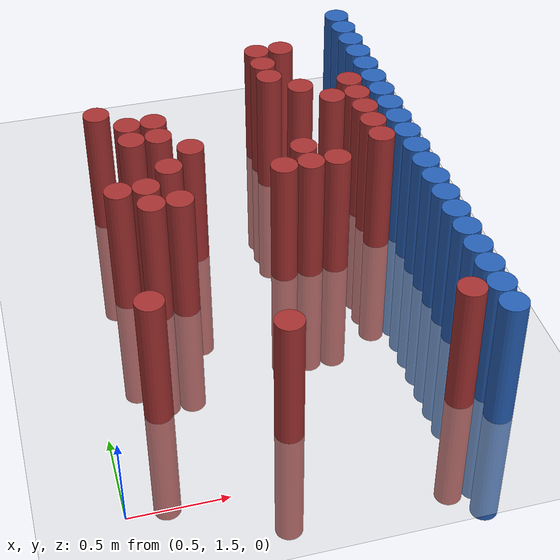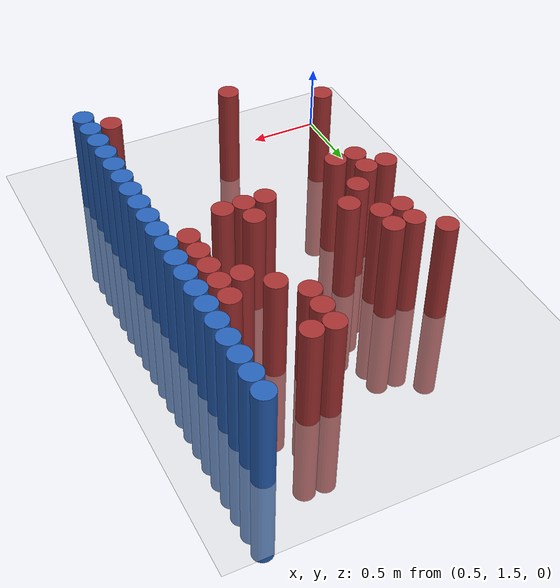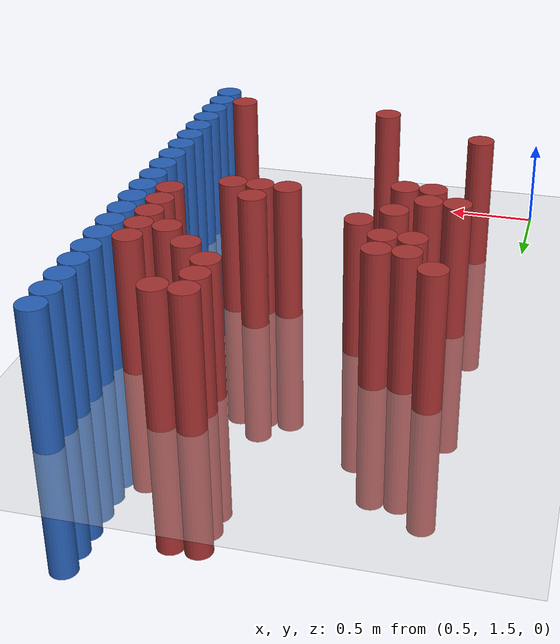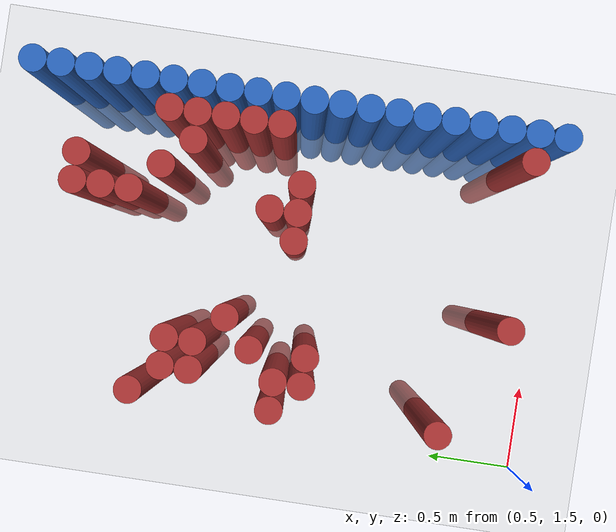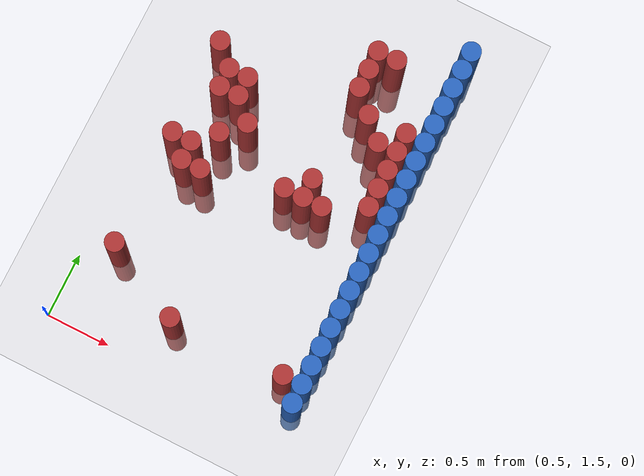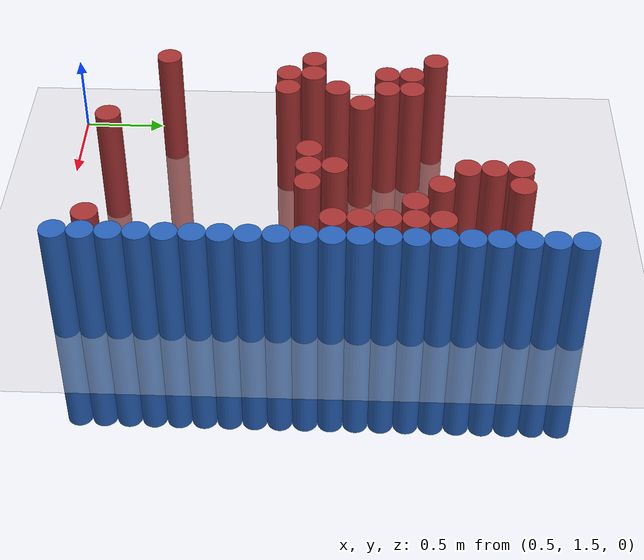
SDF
<sdf version="1.6">
 <world name="default">
  <model name="ground_plane">
   <static>1</static>
   <link name="link">
    <collision name="collision">
     <geometry><plane><normal>0 0 1</normal><size>100 100</size></plane></geometry>
     <surface><friction><ode><mu>100</mu><mu2>50</mu2></ode></friction></surface>
    </collision>
    <visual name="visual">
     <cast_shadows>0</cast_shadows>
     <geometry><plane><normal>0 0 1</normal><size>100 100</size></plane></geometry>
     <material>
      <script><uri>file://media/materials/scripts/gazebo.material</uri><name>Gazebo/Grey</name></script>
     </material>
    </visual>
   </link>
  </model>
  <model name="unit_cylinder_166">
   <static>1</static>
   <pose>0.775000 2.125000 0.000000 0.000000 0.000000 0.000000</pose>
   <link name="link">
    <inertial>
     <mass>1</mass>
     <inertia><ixx>0.145833</ixx><ixy>0</ixy><ixz>0</ixz><iyy>0.145833</iyy><iyz>0</iyz><izz>0.125</izz></inertia>
    </inertial>
    <collision name="collision">
     <geometry><cylinder><radius>0.075000</radius><length>1.5</length></cylinder></geometry>
    </collision>
    <visual name="visual">
     <geometry><cylinder><radius>0.075000</radius><length>1.5</length></cylinder></geometry>
     <material>
      <ambient>0.648000 0.192000 0.192000 1</ambient>
      <diffuse>0.648000 0.192000 0.192000 1</diffuse>
     </material>
     <material>
      <script><name>Gazebo/Grey</name><uri>file://media/materials/scripts/gazebo.material</uri></script>
     </material>
    </visual>
   </link>
  </model>
  <model name="unit_cylinder_167">
   <static>1</static>
   <pose>0.775000 3.025000 0.000000 0.000000 0.000000 0.000000</pose>
   <link name="link">
    <inertial>
     <mass>1</mass>
     <inertia><ixx>0.145833</ixx><ixy>0</ixy><ixz>0</ixz><iyy>0.145833</iyy><iyz>0</iyz><izz>0.125</izz></inertia>
    </inertial>
    <collision name="collision">
     <geometry><cylinder><radius>0.075000</radius><length>1.5</length></cylinder></geometry>
    </collision>
    <visual name="visual">
     <geometry><cylinder><radius>0.075000</radius><length>1.5</length></cylinder></geometry>
     <material>
      <ambient>0.648000 0.192000 0.192000 1</ambient>
      <diffuse>0.648000 0.192000 0.192000 1</diffuse>
     </material>
     <material>
      <script><name>Gazebo/Grey</name><uri>file://media/materials/scripts/gazebo.material</uri></script>
     </material>
    </visual>
   </link>
  </model>
  <model name="unit_cylinder_168">
   <static>1</static>
   <pose>0.775000 3.775000 0.000000 0.000000 0.000000 0.000000</pose>
   <link name="link">
    <inertial>
     <mass>1</mass>
     <inertia><ixx>0.145833</ixx><ixy>0</ixy><ixz>0</ixz><iyy>0.145833</iyy><iyz>0</iyz><izz>0.125</izz></inertia>
    </inertial>
    <collision name="collision">
     <geometry><cylinder><radius>0.075000</radius><length>1.5</length></cylinder></geometry>
    </collision>
    <visual name="visual">
     <geometry><cylinder><radius>0.075000</radius><length>1.5</length></cylinder></geometry>
     <material>
      <ambient>0.648000 0.192000 0.192000 1</ambient>
      <diffuse>0.648000 0.192000 0.192000 1</diffuse>
     </material>
     <material>
      <script><name>Gazebo/Grey</name><uri>file://media/materials/scripts/gazebo.material</uri></script>
     </material>
    </visual>
   </link>
  </model>
  <model name="unit_cylinder_171">
   <static>1</static>
   <pose>0.925000 2.875000 0.000000 0.000000 0.000000 0.000000</pose>
   <link name="link">
    <inertial>
     <mass>1</mass>
     <inertia><ixx>0.145833</ixx><ixy>0</ixy><ixz>0</ixz><iyy>0.145833</iyy><iyz>0</iyz><izz>0.125</izz></inertia>
    </inertial>
    <collision name="collision">
     <geometry><cylinder><radius>0.075000</radius><length>1.5</length></cylinder></geometry>
    </collision>
    <visual name="visual">
     <geometry><cylinder><radius>0.075000</radius><length>1.5</length></cylinder></geometry>
     <material>
      <ambient>0.648000 0.192000 0.192000 1</ambient>
      <diffuse>0.648000 0.192000 0.192000 1</diffuse>
     </material>
     <material>
      <script><name>Gazebo/Grey</name><uri>file://media/materials/scripts/gazebo.material</uri></script>
     </material>
    </visual>
   </link>
  </model>
  <model name="unit_cylinder_172">
   <static>1</static>
   <pose>0.925000 3.025000 0.000000 0.000000 0.000000 0.000000</pose>
   <link name="link">
    <inertial>
     <mass>1</mass>
     <inertia><ixx>0.145833</ixx><ixy>0</ixy><ixz>0</ixz><iyy>0.145833</iyy><iyz>0</iyz><izz>0.125</izz></inertia>
    </inertial>
    <collision name="collision">
     <geometry><cylinder><radius>0.075000</radius><length>1.5</length></cylinder></geometry>
    </collision>
    <visual name="visual">
     <geometry><cylinder><radius>0.075000</radius><length>1.5</length></cylinder></geometry>
     <material>
      <ambient>0.648000 0.192000 0.192000 1</ambient>
      <diffuse>0.648000 0.192000 0.192000 1</diffuse>
     </material>
     <material>
      <script><name>Gazebo/Grey</name><uri>file://media/materials/scripts/gazebo.material</uri></script>
     </material>
    </visual>
   </link>
  </model>
  <model name="unit_cylinder_173">
   <static>1</static>
   <pose>0.925000 3.475000 0.000000 0.000000 0.000000 0.000000</pose>
   <link name="link">
    <inertial>
     <mass>1</mass>
     <inertia><ixx>0.145833</ixx><ixy>0</ixy><ixz>0</ixz><iyy>0.145833</iyy><iyz>0</iyz><izz>0.125</izz></inertia>
    </inertial>
    <collision name="collision">
     <geometry><cylinder><radius>0.075000</radius><length>1.5</length></cylinder></geometry>
    </collision>
    <visual name="visual">
     <geometry><cylinder><radius>0.075000</radius><length>1.5</length></cylinder></geometry>
     <material>
      <ambient>0.648000 0.192000 0.192000 1</ambient>
      <diffuse>0.648000 0.192000 0.192000 1</diffuse>
     </material>
     <material>
      <script><name>Gazebo/Grey</name><uri>file://media/materials/scripts/gazebo.material</uri></script>
     </material>
    </visual>
   </link>
  </model>
  <model name="unit_cylinder_174">
   <static>1</static>
   <pose>0.925000 3.625000 0.000000 0.000000 0.000000 0.000000</pose>
   <link name="link">
    <inertial>
     <mass>1</mass>
     <inertia><ixx>0.145833</ixx><ixy>0</ixy><ixz>0</ixz><iyy>0.145833</iyy><iyz>0</iyz><izz>0.125</izz></inertia>
    </inertial>
    <collision name="collision">
     <geometry><cylinder><radius>0.075000</radius><length>1.5</length></cylinder></geometry>
    </collision>
    <visual name="visual">
     <geometry><cylinder><radius>0.075000</radius><length>1.5</length></cylinder></geometry>
     <material>
      <ambient>0.648000 0.192000 0.192000 1</ambient>
      <diffuse>0.648000 0.192000 0.192000 1</diffuse>
     </material>
     <material>
      <script><name>Gazebo/Grey</name><uri>file://media/materials/scripts/gazebo.material</uri></script>
     </material>
    </visual>
   </link>
  </model>
  <model name="unit_cylinder_176">
   <static>1</static>
   <pose>1.075000 2.875000 0.000000 0.000000 0.000000 0.000000</pose>
   <link name="link">
    <inertial>
     <mass>1</mass>
     <inertia><ixx>0.145833</ixx><ixy>0</ixy><ixz>0</ixz><iyy>0.145833</iyy><iyz>0</iyz><izz>0.125</izz></inertia>
    </inertial>
    <collision name="collision">
     <geometry><cylinder><radius>0.075000</radius><length>1.5</length></cylinder></geometry>
    </collision>
    <visual name="visual">
     <geometry><cylinder><radius>0.075000</radius><length>1.5</length></cylinder></geometry>
     <material>
      <ambient>0.648000 0.192000 0.192000 1</ambient>
      <diffuse>0.648000 0.192000 0.192000 1</diffuse>
     </material>
     <material>
      <script><name>Gazebo/Grey</name><uri>file://media/materials/scripts/gazebo.material</uri></script>
     </material>
    </visual>
   </link>
  </model>
  <model name="unit_cylinder_177">
   <static>1</static>
   <pose>1.075000 3.175000 0.000000 0.000000 0.000000 0.000000</pose>
   <link name="link">
    <inertial>
     <mass>1</mass>
     <inertia><ixx>0.145833</ixx><ixy>0</ixy><ixz>0</ixz><iyy>0.145833</iyy><iyz>0</iyz><izz>0.125</izz></inertia>
    </inertial>
    <collision name="collision">
     <geometry><cylinder><radius>0.075000</radius><length>1.5</length></cylinder></geometry>
    </collision>
    <visual name="visual">
     <geometry><cylinder><radius>0.075000</radius><length>1.5</length></cylinder></geometry>
     <material>
      <ambient>0.648000 0.192000 0.192000 1</ambient>
      <diffuse>0.648000 0.192000 0.192000 1</diffuse>
     </material>
     <material>
      <script><name>Gazebo/Grey</name><uri>file://media/materials/scripts/gazebo.material</uri></script>
     </material>
    </visual>
   </link>
  </model>
  <model name="unit_cylinder_178">
   <static>1</static>
   <pose>1.075000 3.475000 0.000000 0.000000 0.000000 0.000000</pose>
   <link name="link">
    <inertial>
     <mass>1</mass>
     <inertia><ixx>0.145833</ixx><ixy>0</ixy><ixz>0</ixz><iyy>0.145833</iyy><iyz>0</iyz><izz>0.125</izz></inertia>
    </inertial>
    <collision name="collision">
     <geometry><cylinder><radius>0.075000</radius><length>1.5</length></cylinder></geometry>
    </collision>
    <visual name="visual">
     <geometry><cylinder><radius>0.075000</radius><length>1.5</length></cylinder></geometry>
     <material>
      <ambient>0.648000 0.192000 0.192000 1</ambient>
      <diffuse>0.648000 0.192000 0.192000 1</diffuse>
     </material>
     <material>
      <script><name>Gazebo/Grey</name><uri>file://media/materials/scripts/gazebo.material</uri></script>
     </material>
    </visual>
   </link>
  </model>
  <model name="unit_cylinder_179">
   <static>1</static>
   <pose>1.075000 3.625000 0.000000 0.000000 0.000000 0.000000</pose>
   <link name="link">
    <inertial>
     <mass>1</mass>
     <inertia><ixx>0.145833</ixx><ixy>0</ixy><ixz>0</ixz><iyy>0.145833</iyy><iyz>0</iyz><izz>0.125</izz></inertia>
    </inertial>
    <collision name="collision">
     <geometry><cylinder><radius>0.075000</radius><length>1.5</length></cylinder></geometry>
    </collision>
    <visual name="visual">
     <geometry><cylinder><radius>0.075000</radius><length>1.5</length></cylinder></geometry>
     <material>
      <ambient>0.648000 0.192000 0.192000 1</ambient>
      <diffuse>0.648000 0.192000 0.192000 1</diffuse>
     </material>
     <material>
      <script><name>Gazebo/Grey</name><uri>file://media/materials/scripts/gazebo.material</uri></script>
     </material>
    </visual>
   </link>
  </model>
  <model name="unit_cylinder_182">
   <static>1</static>
   <pose>1.225000 3.325000 0.000000 0.000000 0.000000 0.000000</pose>
   <link name="link">
    <inertial>
     <mass>1</mass>
     <inertia><ixx>0.145833</ixx><ixy>0</ixy><ixz>0</ixz><iyy>0.145833</iyy><iyz>0</iyz><izz>0.125</izz></inertia>
    </inertial>
    <collision name="collision">
     <geometry><cylinder><radius>0.075000</radius><length>1.5</length></cylinder></geometry>
    </collision>
    <visual name="visual">
     <geometry><cylinder><radius>0.075000</radius><length>1.5</length></cylinder></geometry>
     <material>
      <ambient>0.648000 0.192000 0.192000 1</ambient>
      <diffuse>0.648000 0.192000 0.192000 1</diffuse>
     </material>
     <material>
      <script><name>Gazebo/Grey</name><uri>file://media/materials/scripts/gazebo.material</uri></script>
     </material>
    </visual>
   </link>
  </model>
  <model name="unit_cylinder_185">
   <static>1</static>
   <pose>1.375000 1.825000 0.000000 0.000000 0.000000 0.000000</pose>
   <link name="link">
    <inertial>
     <mass>1</mass>
     <inertia><ixx>0.145833</ixx><ixy>0</ixy><ixz>0</ixz><iyy>0.145833</iyy><iyz>0</iyz><izz>0.125</izz></inertia>
    </inertial>
    <collision name="collision">
     <geometry><cylinder><radius>0.075000</radius><length>1.5</length></cylinder></geometry>
    </collision>
    <visual name="visual">
     <geometry><cylinder><radius>0.075000</radius><length>1.5</length></cylinder></geometry>
     <material>
      <ambient>0.648000 0.192000 0.192000 1</ambient>
      <diffuse>0.648000 0.192000 0.192000 1</diffuse>
     </material>
     <material>
      <script><name>Gazebo/Grey</name><uri>file://media/materials/scripts/gazebo.material</uri></script>
     </material>
    </visual>
   </link>
  </model>
  <model name="unit_cylinder_190">
   <static>1</static>
   <pose>1.675000 3.025000 0.000000 0.000000 0.000000 0.000000</pose>
   <link name="link">
    <inertial>
     <mass>1</mass>
     <inertia><ixx>0.145833</ixx><ixy>0</ixy><ixz>0</ixz><iyy>0.145833</iyy><iyz>0</iyz><izz>0.125</izz></inertia>
    </inertial>
    <collision name="collision">
     <geometry><cylinder><radius>0.075000</radius><length>1.5</length></cylinder></geometry>
    </collision>
    <visual name="visual">
     <geometry><cylinder><radius>0.075000</radius><length>1.5</length></cylinder></geometry>
     <material>
      <ambient>0.648000 0.192000 0.192000 1</ambient>
      <diffuse>0.648000 0.192000 0.192000 1</diffuse>
     </material>
     <material>
      <script><name>Gazebo/Grey</name><uri>file://media/materials/scripts/gazebo.material</uri></script>
     </material>
    </visual>
   </link>
  </model>
  <model name="unit_cylinder_196">
   <static>1</static>
   <pose>1.825000 3.025000 0.000000 0.000000 0.000000 0.000000</pose>
   <link name="link">
    <inertial>
     <mass>1</mass>
     <inertia><ixx>0.145833</ixx><ixy>0</ixy><ixz>0</ixz><iyy>0.145833</iyy><iyz>0</iyz><izz>0.125</izz></inertia>
    </inertial>
    <collision name="collision">
     <geometry><cylinder><radius>0.075000</radius><length>1.5</length></cylinder></geometry>
    </collision>
    <visual name="visual">
     <geometry><cylinder><radius>0.075000</radius><length>1.5</length></cylinder></geometry>
     <material>
      <ambient>0.648000 0.192000 0.192000 1</ambient>
      <diffuse>0.648000 0.192000 0.192000 1</diffuse>
     </material>
     <material>
      <script><name>Gazebo/Grey</name><uri>file://media/materials/scripts/gazebo.material</uri></script>
     </material>
    </visual>
   </link>
  </model>
  <model name="unit_cylinder_197">
   <static>1</static>
   <pose>1.825000 3.175000 0.000000 0.000000 0.000000 0.000000</pose>
   <link name="link">
    <inertial>
     <mass>1</mass>
     <inertia><ixx>0.145833</ixx><ixy>0</ixy><ixz>0</ixz><iyy>0.145833</iyy><iyz>0</iyz><izz>0.125</izz></inertia>
    </inertial>
    <collision name="collision">
     <geometry><cylinder><radius>0.075000</radius><length>1.5</length></cylinder></geometry>
    </collision>
    <visual name="visual">
     <geometry><cylinder><radius>0.075000</radius><length>1.5</length></cylinder></geometry>
     <material>
      <ambient>0.648000 0.192000 0.192000 1</ambient>
      <diffuse>0.648000 0.192000 0.192000 1</diffuse>
     </material>
     <material>
      <script><name>Gazebo/Grey</name><uri>file://media/materials/scripts/gazebo.material</uri></script>
     </material>
    </visual>
   </link>
  </model>
  <model name="unit_cylinder_198">
   <static>1</static>
   <pose>1.825000 3.925000 0.000000 0.000000 0.000000 0.000000</pose>
   <link name="link">
    <inertial>
     <mass>1</mass>
     <inertia><ixx>0.145833</ixx><ixy>0</ixy><ixz>0</ixz><iyy>0.145833</iyy><iyz>0</iyz><izz>0.125</izz></inertia>
    </inertial>
    <collision name="collision">
     <geometry><cylinder><radius>0.075000</radius><length>1.5</length></cylinder></geometry>
    </collision>
    <visual name="visual">
     <geometry><cylinder><radius>0.075000</radius><length>1.5</length></cylinder></geometry>
     <material>
      <ambient>0.648000 0.192000 0.192000 1</ambient>
      <diffuse>0.648000 0.192000 0.192000 1</diffuse>
     </material>
     <material>
      <script><name>Gazebo/Grey</name><uri>file://media/materials/scripts/gazebo.material</uri></script>
     </material>
    </visual>
   </link>
  </model>
  <model name="unit_cylinder_199">
   <static>1</static>
   <pose>1.825000 4.075000 0.000000 0.000000 0.000000 0.000000</pose>
   <link name="link">
    <inertial>
     <mass>1</mass>
     <inertia><ixx>0.145833</ixx><ixy>0</ixy><ixz>0</ixz><iyy>0.145833</iyy><iyz>0</iyz><izz>0.125</izz></inertia>
    </inertial>
    <collision name="collision">
     <geometry><cylinder><radius>0.075000</radius><length>1.5</length></cylinder></geometry>
    </collision>
    <visual name="visual">
     <geometry><cylinder><radius>0.075000</radius><length>1.5</length></cylinder></geometry>
     <material>
      <ambient>0.648000 0.192000 0.192000 1</ambient>
      <diffuse>0.648000 0.192000 0.192000 1</diffuse>
     </material>
     <material>
      <script><name>Gazebo/Grey</name><uri>file://media/materials/scripts/gazebo.material</uri></script>
     </material>
    </visual>
   </link>
  </model>
  <model name="unit_cylinder_200">
   <static>1</static>
   <pose>1.825000 4.225000 0.000000 0.000000 0.000000 0.000000</pose>
   <link name="link">
    <inertial>
     <mass>1</mass>
     <inertia><ixx>0.145833</ixx><ixy>0</ixy><ixz>0</ixz><iyy>0.145833</iyy><iyz>0</iyz><izz>0.125</izz></inertia>
    </inertial>
    <collision name="collision">
     <geometry><cylinder><radius>0.075000</radius><length>1.5</length></cylinder></geometry>
    </collision>
    <visual name="visual">
     <geometry><cylinder><radius>0.075000</radius><length>1.5</length></cylinder></geometry>
     <material>
      <ambient>0.648000 0.192000 0.192000 1</ambient>
      <diffuse>0.648000 0.192000 0.192000 1</diffuse>
     </material>
     <material>
      <script><name>Gazebo/Grey</name><uri>file://media/materials/scripts/gazebo.material</uri></script>
     </material>
    </visual>
   </link>
  </model>
  <model name="unit_cylinder_204">
   <static>1</static>
   <pose>1.975000 3.025000 0.000000 0.000000 0.000000 0.000000</pose>
   <link name="link">
    <inertial>
     <mass>1</mass>
     <inertia><ixx>0.145833</ixx><ixy>0</ixy><ixz>0</ixz><iyy>0.145833</iyy><iyz>0</iyz><izz>0.125</izz></inertia>
    </inertial>
    <collision name="collision">
     <geometry><cylinder><radius>0.075000</radius><length>1.5</length></cylinder></geometry>
    </collision>
    <visual name="visual">
     <geometry><cylinder><radius>0.075000</radius><length>1.5</length></cylinder></geometry>
     <material>
      <ambient>0.648000 0.192000 0.192000 1</ambient>
      <diffuse>0.648000 0.192000 0.192000 1</diffuse>
     </material>
     <material>
      <script><name>Gazebo/Grey</name><uri>file://media/materials/scripts/gazebo.material</uri></script>
     </material>
    </visual>
   </link>
  </model>
  <model name="unit_cylinder_205">
   <static>1</static>
   <pose>1.975000 3.775000 0.000000 0.000000 0.000000 0.000000</pose>
   <link name="link">
    <inertial>
     <mass>1</mass>
     <inertia><ixx>0.145833</ixx><ixy>0</ixy><ixz>0</ixz><iyy>0.145833</iyy><iyz>0</iyz><izz>0.125</izz></inertia>
    </inertial>
    <collision name="collision">
     <geometry><cylinder><radius>0.075000</radius><length>1.5</length></cylinder></geometry>
    </collision>
    <visual name="visual">
     <geometry><cylinder><radius>0.075000</radius><length>1.5</length></cylinder></geometry>
     <material>
      <ambient>0.648000 0.192000 0.192000 1</ambient>
      <diffuse>0.648000 0.192000 0.192000 1</diffuse>
     </material>
     <material>
      <script><name>Gazebo/Grey</name><uri>file://media/materials/scripts/gazebo.material</uri></script>
     </material>
    </visual>
   </link>
  </model>
  <model name="unit_cylinder_206">
   <static>1</static>
   <pose>1.975000 4.225000 0.000000 0.000000 0.000000 0.000000</pose>
   <link name="link">
    <inertial>
     <mass>1</mass>
     <inertia><ixx>0.145833</ixx><ixy>0</ixy><ixz>0</ixz><iyy>0.145833</iyy><iyz>0</iyz><izz>0.125</izz></inertia>
    </inertial>
    <collision name="collision">
     <geometry><cylinder><radius>0.075000</radius><length>1.5</length></cylinder></geometry>
    </collision>
    <visual name="visual">
     <geometry><cylinder><radius>0.075000</radius><length>1.5</length></cylinder></geometry>
     <material>
      <ambient>0.648000 0.192000 0.192000 1</ambient>
      <diffuse>0.648000 0.192000 0.192000 1</diffuse>
     </material>
     <material>
      <script><name>Gazebo/Grey</name><uri>file://media/materials/scripts/gazebo.material</uri></script>
     </material>
    </visual>
   </link>
  </model>
  <model name="unit_cylinder_207">
   <static>1</static>
   <pose>2.125000 3.625000 0.000000 0.000000 0.000000 0.000000</pose>
   <link name="link">
    <inertial>
     <mass>1</mass>
     <inertia><ixx>0.145833</ixx><ixy>0</ixy><ixz>0</ixz><iyy>0.145833</iyy><iyz>0</iyz><izz>0.125</izz></inertia>
    </inertial>
    <collision name="collision">
     <geometry><cylinder><radius>0.075000</radius><length>1.5</length></cylinder></geometry>
    </collision>
    <visual name="visual">
     <geometry><cylinder><radius>0.075000</radius><length>1.5</length></cylinder></geometry>
     <material>
      <ambient>0.648000 0.192000 0.192000 1</ambient>
      <diffuse>0.648000 0.192000 0.192000 1</diffuse>
     </material>
     <material>
      <script><name>Gazebo/Grey</name><uri>file://media/materials/scripts/gazebo.material</uri></script>
     </material>
    </visual>
   </link>
  </model>
  <model name="unit_cylinder_208">
   <static>1</static>
   <pose>2.275000 1.825000 0.000000 0.000000 0.000000 0.000000</pose>
   <link name="link">
    <inertial>
     <mass>1</mass>
     <inertia><ixx>0.145833</ixx><ixy>0</ixy><ixz>0</ixz><iyy>0.145833</iyy><iyz>0</iyz><izz>0.125</izz></inertia>
    </inertial>
    <collision name="collision">
     <geometry><cylinder><radius>0.075000</radius><length>1.5</length></cylinder></geometry>
    </collision>
    <visual name="visual">
     <geometry><cylinder><radius>0.075000</radius><length>1.5</length></cylinder></geometry>
     <material>
      <ambient>0.648000 0.192000 0.192000 1</ambient>
      <diffuse>0.648000 0.192000 0.192000 1</diffuse>
     </material>
     <material>
      <script><name>Gazebo/Grey</name><uri>file://media/materials/scripts/gazebo.material</uri></script>
     </material>
    </visual>
   </link>
  </model>
  <model name="unit_cylinder_209">
   <static>1</static>
   <pose>2.275000 3.175000 0.000000 0.000000 0.000000 0.000000</pose>
   <link name="link">
    <inertial>
     <mass>1</mass>
     <inertia><ixx>0.145833</ixx><ixy>0</ixy><ixz>0</ixz><iyy>0.145833</iyy><iyz>0</iyz><izz>0.125</izz></inertia>
    </inertial>
    <collision name="collision">
     <geometry><cylinder><radius>0.075000</radius><length>1.5</length></cylinder></geometry>
    </collision>
    <visual name="visual">
     <geometry><cylinder><radius>0.075000</radius><length>1.5</length></cylinder></geometry>
     <material>
      <ambient>0.648000 0.192000 0.192000 1</ambient>
      <diffuse>0.648000 0.192000 0.192000 1</diffuse>
     </material>
     <material>
      <script><name>Gazebo/Grey</name><uri>file://media/materials/scripts/gazebo.material</uri></script>
     </material>
    </visual>
   </link>
  </model>
  <model name="unit_cylinder_210">
   <static>1</static>
   <pose>2.275000 3.325000 0.000000 0.000000 0.000000 0.000000</pose>
   <link name="link">
    <inertial>
     <mass>1</mass>
     <inertia><ixx>0.145833</ixx><ixy>0</ixy><ixz>0</ixz><iyy>0.145833</iyy><iyz>0</iyz><izz>0.125</izz></inertia>
    </inertial>
    <collision name="collision">
     <geometry><cylinder><radius>0.075000</radius><length>1.5</length></cylinder></geometry>
    </collision>
    <visual name="visual">
     <geometry><cylinder><radius>0.075000</radius><length>1.5</length></cylinder></geometry>
     <material>
      <ambient>0.648000 0.192000 0.192000 1</ambient>
      <diffuse>0.648000 0.192000 0.192000 1</diffuse>
     </material>
     <material>
      <script><name>Gazebo/Grey</name><uri>file://media/materials/scripts/gazebo.material</uri></script>
     </material>
    </visual>
   </link>
  </model>
  <model name="unit_cylinder_211">
   <static>1</static>
   <pose>2.275000 3.475000 0.000000 0.000000 0.000000 0.000000</pose>
   <link name="link">
    <inertial>
     <mass>1</mass>
     <inertia><ixx>0.145833</ixx><ixy>0</ixy><ixz>0</ixz><iyy>0.145833</iyy><iyz>0</iyz><izz>0.125</izz></inertia>
    </inertial>
    <collision name="collision">
     <geometry><cylinder><radius>0.075000</radius><length>1.5</length></cylinder></geometry>
    </collision>
    <visual name="visual">
     <geometry><cylinder><radius>0.075000</radius><length>1.5</length></cylinder></geometry>
     <material>
      <ambient>0.648000 0.192000 0.192000 1</ambient>
      <diffuse>0.648000 0.192000 0.192000 1</diffuse>
     </material>
     <material>
      <script><name>Gazebo/Grey</name><uri>file://media/materials/scripts/gazebo.material</uri></script>
     </material>
    </visual>
   </link>
  </model>
  <model name="unit_cylinder_212">
   <static>1</static>
   <pose>2.275000 3.625000 0.000000 0.000000 0.000000 0.000000</pose>
   <link name="link">
    <inertial>
     <mass>1</mass>
     <inertia><ixx>0.145833</ixx><ixy>0</ixy><ixz>0</ixz><iyy>0.145833</iyy><iyz>0</iyz><izz>0.125</izz></inertia>
    </inertial>
    <collision name="collision">
     <geometry><cylinder><radius>0.075000</radius><length>1.5</length></cylinder></geometry>
    </collision>
    <visual name="visual">
     <geometry><cylinder><radius>0.075000</radius><length>1.5</length></cylinder></geometry>
     <material>
      <ambient>0.648000 0.192000 0.192000 1</ambient>
      <diffuse>0.648000 0.192000 0.192000 1</diffuse>
     </material>
     <material>
      <script><name>Gazebo/Grey</name><uri>file://media/materials/scripts/gazebo.material</uri></script>
     </material>
    </visual>
   </link>
  </model>
  <model name="unit_cylinder_213">
   <static>1</static>
   <pose>2.275000 3.775000 0.000000 0.000000 0.000000 0.000000</pose>
   <link name="link">
    <inertial>
     <mass>1</mass>
     <inertia><ixx>0.145833</ixx><ixy>0</ixy><ixz>0</ixz><iyy>0.145833</iyy><iyz>0</iyz><izz>0.125</izz></inertia>
    </inertial>
    <collision name="collision">
     <geometry><cylinder><radius>0.075000</radius><length>1.5</length></cylinder></geometry>
    </collision>
    <visual name="visual">
     <geometry><cylinder><radius>0.075000</radius><length>1.5</length></cylinder></geometry>
     <material>
      <ambient>0.648000 0.192000 0.192000 1</ambient>
      <diffuse>0.648000 0.192000 0.192000 1</diffuse>
     </material>
     <material>
      <script><name>Gazebo/Grey</name><uri>file://media/materials/scripts/gazebo.material</uri></script>
     </material>
    </visual>
   </link>
  </model>
  <model name="unit_cylinder_224">
   <static>1</static>
   <pose>2.425000 1.675000 0.000000 0.000000 0.000000 0.000000</pose>
   <link name="link">
    <inertial>
     <mass>1</mass>
     <inertia><ixx>0.145833</ixx><ixy>0</ixy><ixz>0</ixz><iyy>0.145833</iyy><iyz>0</iyz><izz>0.125</izz></inertia>
    </inertial>
    <collision name="collision">
     <geometry><cylinder><radius>0.075000</radius><length>1.5</length></cylinder></geometry>
    </collision>
    <visual name="visual">
     <geometry><cylinder><radius>0.075000</radius><length>1.5</length></cylinder></geometry>
     <material>
      <ambient>0.152000 0.379000 0.720000 1</ambient>
      <diffuse>0.152000 0.379000 0.720000 1</diffuse>
     </material>
     <material>
      <script><name>Gazebo/Grey</name><uri>file://media/materials/scripts/gazebo.material</uri></script>
     </material>
    </visual>
   </link>
  </model>
  <model name="unit_cylinder_225">
   <static>1</static>
   <pose>2.425000 1.825000 0.000000 0.000000 0.000000 0.000000</pose>
   <link name="link">
    <inertial>
     <mass>1</mass>
     <inertia><ixx>0.145833</ixx><ixy>0</ixy><ixz>0</ixz><iyy>0.145833</iyy><iyz>0</iyz><izz>0.125</izz></inertia>
    </inertial>
    <collision name="collision">
     <geometry><cylinder><radius>0.075000</radius><length>1.5</length></cylinder></geometry>
    </collision>
    <visual name="visual">
     <geometry><cylinder><radius>0.075000</radius><length>1.5</length></cylinder></geometry>
     <material>
      <ambient>0.152000 0.379000 0.720000 1</ambient>
      <diffuse>0.152000 0.379000 0.720000 1</diffuse>
     </material>
     <material>
      <script><name>Gazebo/Grey</name><uri>file://media/materials/scripts/gazebo.material</uri></script>
     </material>
    </visual>
   </link>
  </model>
  <model name="unit_cylinder_226">
   <static>1</static>
   <pose>2.425000 1.975000 0.000000 0.000000 0.000000 0.000000</pose>
   <link name="link">
    <inertial>
     <mass>1</mass>
     <inertia><ixx>0.145833</ixx><ixy>0</ixy><ixz>0</ixz><iyy>0.145833</iyy><iyz>0</iyz><izz>0.125</izz></inertia>
    </inertial>
    <collision name="collision">
     <geometry><cylinder><radius>0.075000</radius><length>1.5</length></cylinder></geometry>
    </collision>
    <visual name="visual">
     <geometry><cylinder><radius>0.075000</radius><length>1.5</length></cylinder></geometry>
     <material>
      <ambient>0.152000 0.379000 0.720000 1</ambient>
      <diffuse>0.152000 0.379000 0.720000 1</diffuse>
     </material>
     <material>
      <script><name>Gazebo/Grey</name><uri>file://media/materials/scripts/gazebo.material</uri></script>
     </material>
    </visual>
   </link>
  </model>
  <model name="unit_cylinder_227">
   <static>1</static>
   <pose>2.425000 2.125000 0.000000 0.000000 0.000000 0.000000</pose>
   <link name="link">
    <inertial>
     <mass>1</mass>
     <inertia><ixx>0.145833</ixx><ixy>0</ixy><ixz>0</ixz><iyy>0.145833</iyy><iyz>0</iyz><izz>0.125</izz></inertia>
    </inertial>
    <collision name="collision">
     <geometry><cylinder><radius>0.075000</radius><length>1.5</length></cylinder></geometry>
    </collision>
    <visual name="visual">
     <geometry><cylinder><radius>0.075000</radius><length>1.5</length></cylinder></geometry>
     <material>
      <ambient>0.152000 0.379000 0.720000 1</ambient>
      <diffuse>0.152000 0.379000 0.720000 1</diffuse>
     </material>
     <material>
      <script><name>Gazebo/Grey</name><uri>file://media/materials/scripts/gazebo.material</uri></script>
     </material>
    </visual>
   </link>
  </model>
  <model name="unit_cylinder_228">
   <static>1</static>
   <pose>2.425000 2.275000 0.000000 0.000000 0.000000 0.000000</pose>
   <link name="link">
    <inertial>
     <mass>1</mass>
     <inertia><ixx>0.145833</ixx><ixy>0</ixy><ixz>0</ixz><iyy>0.145833</iyy><iyz>0</iyz><izz>0.125</izz></inertia>
    </inertial>
    <collision name="collision">
     <geometry><cylinder><radius>0.075000</radius><length>1.5</length></cylinder></geometry>
    </collision>
    <visual name="visual">
     <geometry><cylinder><radius>0.075000</radius><length>1.5</length></cylinder></geometry>
     <material>
      <ambient>0.152000 0.379000 0.720000 1</ambient>
      <diffuse>0.152000 0.379000 0.720000 1</diffuse>
     </material>
     <material>
      <script><name>Gazebo/Grey</name><uri>file://media/materials/scripts/gazebo.material</uri></script>
     </material>
    </visual>
   </link>
  </model>
  <model name="unit_cylinder_229">
   <static>1</static>
   <pose>2.425000 2.425000 0.000000 0.000000 0.000000 0.000000</pose>
   <link name="link">
    <inertial>
     <mass>1</mass>
     <inertia><ixx>0.145833</ixx><ixy>0</ixy><ixz>0</ixz><iyy>0.145833</iyy><iyz>0</iyz><izz>0.125</izz></inertia>
    </inertial>
    <collision name="collision">
     <geometry><cylinder><radius>0.075000</radius><length>1.5</length></cylinder></geometry>
    </collision>
    <visual name="visual">
     <geometry><cylinder><radius>0.075000</radius><length>1.5</length></cylinder></geometry>
     <material>
      <ambient>0.152000 0.379000 0.720000 1</ambient>
      <diffuse>0.152000 0.379000 0.720000 1</diffuse>
     </material>
     <material>
      <script><name>Gazebo/Grey</name><uri>file://media/materials/scripts/gazebo.material</uri></script>
     </material>
    </visual>
   </link>
  </model>
  <model name="unit_cylinder_230">
   <static>1</static>
   <pose>2.425000 2.575000 0.000000 0.000000 0.000000 0.000000</pose>
   <link name="link">
    <inertial>
     <mass>1</mass>
     <inertia><ixx>0.145833</ixx><ixy>0</ixy><ixz>0</ixz><iyy>0.145833</iyy><iyz>0</iyz><izz>0.125</izz></inertia>
    </inertial>
    <collision name="collision">
     <geometry><cylinder><radius>0.075000</radius><length>1.5</length></cylinder></geometry>
    </collision>
    <visual name="visual">
     <geometry><cylinder><radius>0.075000</radius><length>1.5</length></cylinder></geometry>
     <material>
      <ambient>0.152000 0.379000 0.720000 1</ambient>
      <diffuse>0.152000 0.379000 0.720000 1</diffuse>
     </material>
     <material>
      <script><name>Gazebo/Grey</name><uri>file://media/materials/scripts/gazebo.material</uri></script>
     </material>
    </visual>
   </link>
  </model>
  <model name="unit_cylinder_231">
   <static>1</static>
   <pose>2.425000 2.725000 0.000000 0.000000 0.000000 0.000000</pose>
   <link name="link">
    <inertial>
     <mass>1</mass>
     <inertia><ixx>0.145833</ixx><ixy>0</ixy><ixz>0</ixz><iyy>0.145833</iyy><iyz>0</iyz><izz>0.125</izz></inertia>
    </inertial>
    <collision name="collision">
     <geometry><cylinder><radius>0.075000</radius><length>1.5</length></cylinder></geometry>
    </collision>
    <visual name="visual">
     <geometry><cylinder><radius>0.075000</radius><length>1.5</length></cylinder></geometry>
     <material>
      <ambient>0.152000 0.379000 0.720000 1</ambient>
      <diffuse>0.152000 0.379000 0.720000 1</diffuse>
     </material>
     <material>
      <script><name>Gazebo/Grey</name><uri>file://media/materials/scripts/gazebo.material</uri></script>
     </material>
    </visual>
   </link>
  </model>
  <model name="unit_cylinder_232">
   <static>1</static>
   <pose>2.425000 2.875000 0.000000 0.000000 0.000000 0.000000</pose>
   <link name="link">
    <inertial>
     <mass>1</mass>
     <inertia><ixx>0.145833</ixx><ixy>0</ixy><ixz>0</ixz><iyy>0.145833</iyy><iyz>0</iyz><izz>0.125</izz></inertia>
    </inertial>
    <collision name="collision">
     <geometry><cylinder><radius>0.075000</radius><length>1.5</length></cylinder></geometry>
    </collision>
    <visual name="visual">
     <geometry><cylinder><radius>0.075000</radius><length>1.5</length></cylinder></geometry>
     <material>
      <ambient>0.152000 0.379000 0.720000 1</ambient>
      <diffuse>0.152000 0.379000 0.720000 1</diffuse>
     </material>
     <material>
      <script><name>Gazebo/Grey</name><uri>file://media/materials/scripts/gazebo.material</uri></script>
     </material>
    </visual>
   </link>
  </model>
  <model name="unit_cylinder_233">
   <static>1</static>
   <pose>2.425000 3.025000 0.000000 0.000000 0.000000 0.000000</pose>
   <link name="link">
    <inertial>
     <mass>1</mass>
     <inertia><ixx>0.145833</ixx><ixy>0</ixy><ixz>0</ixz><iyy>0.145833</iyy><iyz>0</iyz><izz>0.125</izz></inertia>
    </inertial>
    <collision name="collision">
     <geometry><cylinder><radius>0.075000</radius><length>1.5</length></cylinder></geometry>
    </collision>
    <visual name="visual">
     <geometry><cylinder><radius>0.075000</radius><length>1.5</length></cylinder></geometry>
     <material>
      <ambient>0.152000 0.379000 0.720000 1</ambient>
      <diffuse>0.152000 0.379000 0.720000 1</diffuse>
     </material>
     <material>
      <script><name>Gazebo/Grey</name><uri>file://media/materials/scripts/gazebo.material</uri></script>
     </material>
    </visual>
   </link>
  </model>
  <model name="unit_cylinder_234">
   <static>1</static>
   <pose>2.425000 3.175000 0.000000 0.000000 0.000000 0.000000</pose>
   <link name="link">
    <inertial>
     <mass>1</mass>
     <inertia><ixx>0.145833</ixx><ixy>0</ixy><ixz>0</ixz><iyy>0.145833</iyy><iyz>0</iyz><izz>0.125</izz></inertia>
    </inertial>
    <collision name="collision">
     <geometry><cylinder><radius>0.075000</radius><length>1.5</length></cylinder></geometry>
    </collision>
    <visual name="visual">
     <geometry><cylinder><radius>0.075000</radius><length>1.5</length></cylinder></geometry>
     <material>
      <ambient>0.152000 0.379000 0.720000 1</ambient>
      <diffuse>0.152000 0.379000 0.720000 1</diffuse>
     </material>
     <material>
      <script><name>Gazebo/Grey</name><uri>file://media/materials/scripts/gazebo.material</uri></script>
     </material>
    </visual>
   </link>
  </model>
  <model name="unit_cylinder_235">
   <static>1</static>
   <pose>2.425000 3.325000 0.000000 0.000000 0.000000 0.000000</pose>
   <link name="link">
    <inertial>
     <mass>1</mass>
     <inertia><ixx>0.145833</ixx><ixy>0</ixy><ixz>0</ixz><iyy>0.145833</iyy><iyz>0</iyz><izz>0.125</izz></inertia>
    </inertial>
    <collision name="collision">
     <geometry><cylinder><radius>0.075000</radius><length>1.5</length></cylinder></geometry>
    </collision>
    <visual name="visual">
     <geometry><cylinder><radius>0.075000</radius><length>1.5</length></cylinder></geometry>
     <material>
      <ambient>0.152000 0.379000 0.720000 1</ambient>
      <diffuse>0.152000 0.379000 0.720000 1</diffuse>
     </material>
     <material>
      <script><name>Gazebo/Grey</name><uri>file://media/materials/scripts/gazebo.material</uri></script>
     </material>
    </visual>
   </link>
  </model>
  <model name="unit_cylinder_236">
   <static>1</static>
   <pose>2.425000 3.475000 0.000000 0.000000 0.000000 0.000000</pose>
   <link name="link">
    <inertial>
     <mass>1</mass>
     <inertia><ixx>0.145833</ixx><ixy>0</ixy><ixz>0</ixz><iyy>0.145833</iyy><iyz>0</iyz><izz>0.125</izz></inertia>
    </inertial>
    <collision name="collision">
     <geometry><cylinder><radius>0.075000</radius><length>1.5</length></cylinder></geometry>
    </collision>
    <visual name="visual">
     <geometry><cylinder><radius>0.075000</radius><length>1.5</length></cylinder></geometry>
     <material>
      <ambient>0.152000 0.379000 0.720000 1</ambient>
      <diffuse>0.152000 0.379000 0.720000 1</diffuse>
     </material>
     <material>
      <script><name>Gazebo/Grey</name><uri>file://media/materials/scripts/gazebo.material</uri></script>
     </material>
    </visual>
   </link>
  </model>
  <model name="unit_cylinder_237">
   <static>1</static>
   <pose>2.425000 3.625000 0.000000 0.000000 0.000000 0.000000</pose>
   <link name="link">
    <inertial>
     <mass>1</mass>
     <inertia><ixx>0.145833</ixx><ixy>0</ixy><ixz>0</ixz><iyy>0.145833</iyy><iyz>0</iyz><izz>0.125</izz></inertia>
    </inertial>
    <collision name="collision">
     <geometry><cylinder><radius>0.075000</radius><length>1.5</length></cylinder></geometry>
    </collision>
    <visual name="visual">
     <geometry><cylinder><radius>0.075000</radius><length>1.5</length></cylinder></geometry>
     <material>
      <ambient>0.152000 0.379000 0.720000 1</ambient>
      <diffuse>0.152000 0.379000 0.720000 1</diffuse>
     </material>
     <material>
      <script><name>Gazebo/Grey</name><uri>file://media/materials/scripts/gazebo.material</uri></script>
     </material>
    </visual>
   </link>
  </model>
  <model name="unit_cylinder_238">
   <static>1</static>
   <pose>2.425000 3.775000 0.000000 0.000000 0.000000 0.000000</pose>
   <link name="link">
    <inertial>
     <mass>1</mass>
     <inertia><ixx>0.145833</ixx><ixy>0</ixy><ixz>0</ixz><iyy>0.145833</iyy><iyz>0</iyz><izz>0.125</izz></inertia>
    </inertial>
    <collision name="collision">
     <geometry><cylinder><radius>0.075000</radius><length>1.5</length></cylinder></geometry>
    </collision>
    <visual name="visual">
     <geometry><cylinder><radius>0.075000</radius><length>1.5</length></cylinder></geometry>
     <material>
      <ambient>0.152000 0.379000 0.720000 1</ambient>
      <diffuse>0.152000 0.379000 0.720000 1</diffuse>
     </material>
     <material>
      <script><name>Gazebo/Grey</name><uri>file://media/materials/scripts/gazebo.material</uri></script>
     </material>
    </visual>
   </link>
  </model>
  <model name="unit_cylinder_239">
   <static>1</static>
   <pose>2.425000 3.925000 0.000000 0.000000 0.000000 0.000000</pose>
   <link name="link">
    <inertial>
     <mass>1</mass>
     <inertia><ixx>0.145833</ixx><ixy>0</ixy><ixz>0</ixz><iyy>0.145833</iyy><iyz>0</iyz><izz>0.125</izz></inertia>
    </inertial>
    <collision name="collision">
     <geometry><cylinder><radius>0.075000</radius><length>1.5</length></cylinder></geometry>
    </collision>
    <visual name="visual">
     <geometry><cylinder><radius>0.075000</radius><length>1.5</length></cylinder></geometry>
     <material>
      <ambient>0.152000 0.379000 0.720000 1</ambient>
      <diffuse>0.152000 0.379000 0.720000 1</diffuse>
     </material>
     <material>
      <script><name>Gazebo/Grey</name><uri>file://media/materials/scripts/gazebo.material</uri></script>
     </material>
    </visual>
   </link>
  </model>
  <model name="unit_cylinder_240">
   <static>1</static>
   <pose>2.425000 4.075000 0.000000 0.000000 0.000000 0.000000</pose>
   <link name="link">
    <inertial>
     <mass>1</mass>
     <inertia><ixx>0.145833</ixx><ixy>0</ixy><ixz>0</ixz><iyy>0.145833</iyy><iyz>0</iyz><izz>0.125</izz></inertia>
    </inertial>
    <collision name="collision">
     <geometry><cylinder><radius>0.075000</radius><length>1.5</length></cylinder></geometry>
    </collision>
    <visual name="visual">
     <geometry><cylinder><radius>0.075000</radius><length>1.5</length></cylinder></geometry>
     <material>
      <ambient>0.152000 0.379000 0.720000 1</ambient>
      <diffuse>0.152000 0.379000 0.720000 1</diffuse>
     </material>
     <material>
      <script><name>Gazebo/Grey</name><uri>file://media/materials/scripts/gazebo.material</uri></script>
     </material>
    </visual>
   </link>
  </model>
  <model name="unit_cylinder_241">
   <static>1</static>
   <pose>2.425000 4.225000 0.000000 0.000000 0.000000 0.000000</pose>
   <link name="link">
    <inertial>
     <mass>1</mass>
     <inertia><ixx>0.145833</ixx><ixy>0</ixy><ixz>0</ixz><iyy>0.145833</iyy><iyz>0</iyz><izz>0.125</izz></inertia>
    </inertial>
    <collision name="collision">
     <geometry><cylinder><radius>0.075000</radius><length>1.5</length></cylinder></geometry>
    </collision>
    <visual name="visual">
     <geometry><cylinder><radius>0.075000</radius><length>1.5</length></cylinder></geometry>
     <material>
      <ambient>0.152000 0.379000 0.720000 1</ambient>
      <diffuse>0.152000 0.379000 0.720000 1</diffuse>
     </material>
     <material>
      <script><name>Gazebo/Grey</name><uri>file://media/materials/scripts/gazebo.material</uri></script>
     </material>
    </visual>
   </link>
  </model>
  <model name="unit_cylinder_242">
   <static>1</static>
   <pose>2.425000 4.375000 0.000000 0.000000 0.000000 0.000000</pose>
   <link name="link">
    <inertial>
     <mass>1</mass>
     <inertia><ixx>0.145833</ixx><ixy>0</ixy><ixz>0</ixz><iyy>0.145833</iyy><iyz>0</iyz><izz>0.125</izz></inertia>
    </inertial>
    <collision name="collision">
     <geometry><cylinder><radius>0.075000</radius><length>1.5</length></cylinder></geometry>
    </collision>
    <visual name="visual">
     <geometry><cylinder><radius>0.075000</radius><length>1.5</length></cylinder></geometry>
     <material>
      <ambient>0.152000 0.379000 0.720000 1</ambient>
      <diffuse>0.152000 0.379000 0.720000 1</diffuse>
     </material>
     <material>
      <script><name>Gazebo/Grey</name><uri>file://media/materials/scripts/gazebo.material</uri></script>
     </material>
    </visual>
   </link>
  </model>
  <model name="unit_cylinder_243">
   <static>1</static>
   <pose>2.425000 4.525000 0.000000 0.000000 0.000000 0.000000</pose>
   <link name="link">
    <inertial>
     <mass>1</mass>
     <inertia><ixx>0.145833</ixx><ixy>0</ixy><ixz>0</ixz><iyy>0.145833</iyy><iyz>0</iyz><izz>0.125</izz></inertia>
    </inertial>
    <collision name="collision">
     <geometry><cylinder><radius>0.075000</radius><length>1.5</length></cylinder></geometry>
    </collision>
    <visual name="visual">
     <geometry><cylinder><radius>0.075000</radius><length>1.5</length></cylinder></geometry>
     <material>
      <ambient>0.152000 0.379000 0.720000 1</ambient>
      <diffuse>0.152000 0.379000 0.720000 1</diffuse>
     </material>
     <material>
      <script><name>Gazebo/Grey</name><uri>file://media/materials/scripts/gazebo.material</uri></script>
     </material>
    </visual>
   </link>
  </model>
 </world>
</sdf>
